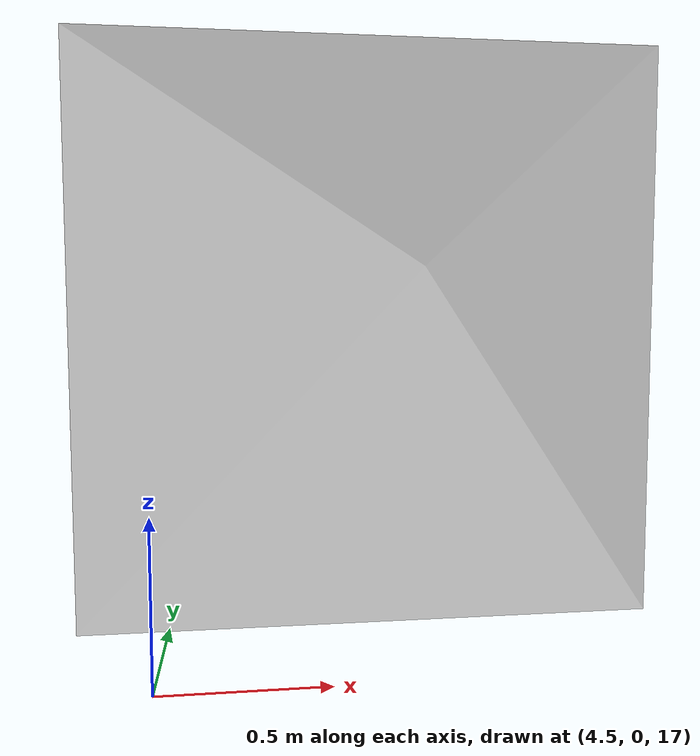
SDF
<?xml version="1.0" ?>
<sdf version="1.9">
  <model name="clover_04">
    <static>true</static>
    <link name="link">
      <collision name="collision">
        <pose>0 0 0.1 0 0 0</pose>
        <geometry>
          <box>
            <size>0.4 0.4 0.2</size>
          </box>
        </geometry>
      </collision>
      <visual name="visual">
        <geometry>
          <mesh>
            <uri>model://clover_04/meshes/Clover-04.obj</uri>
          </mesh>
        </geometry>
      </visual>
    </link>
  </model>
</sdf>
